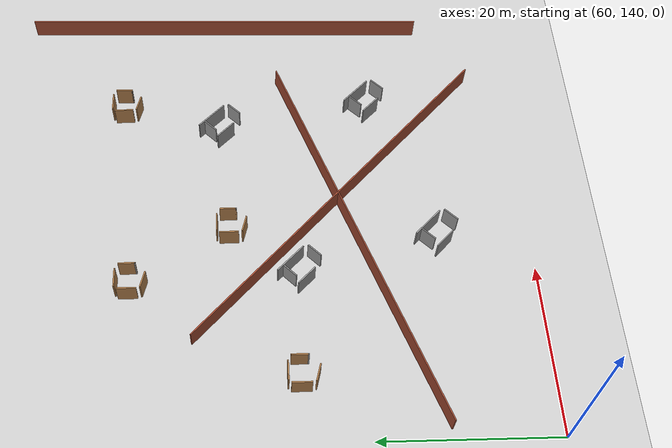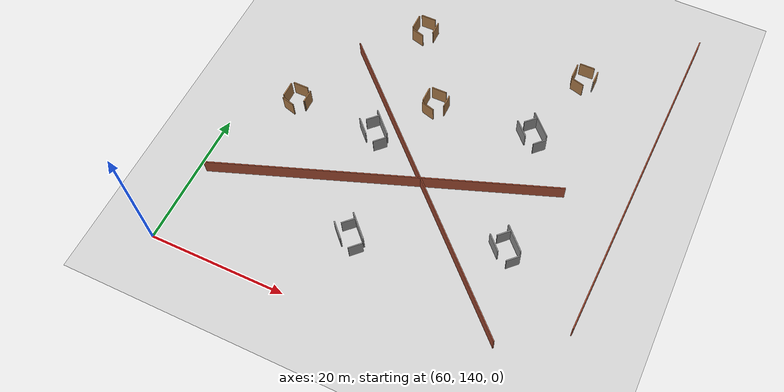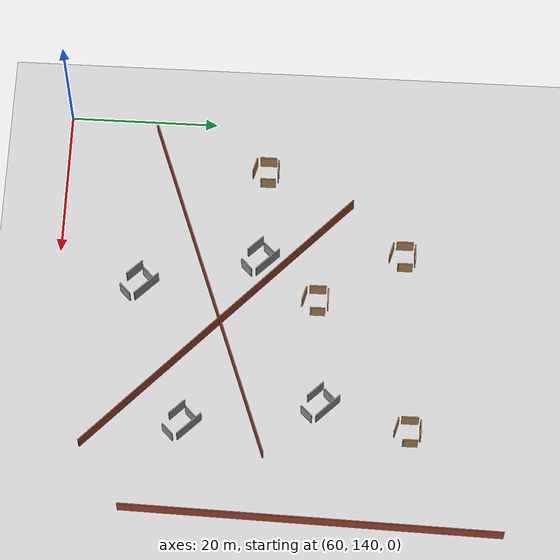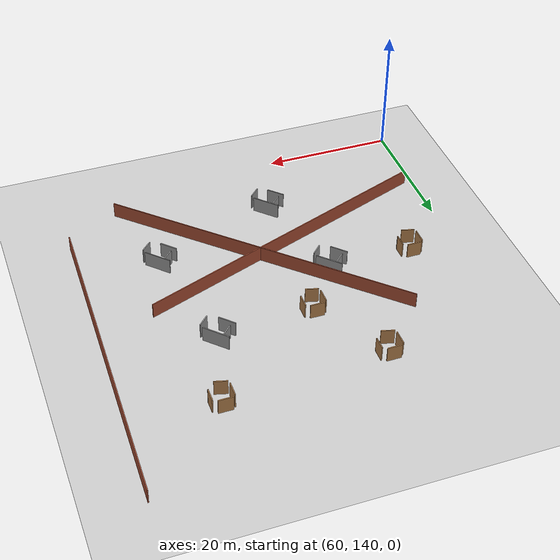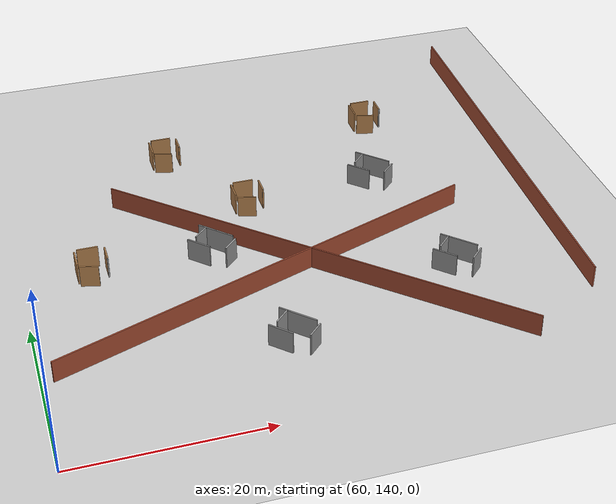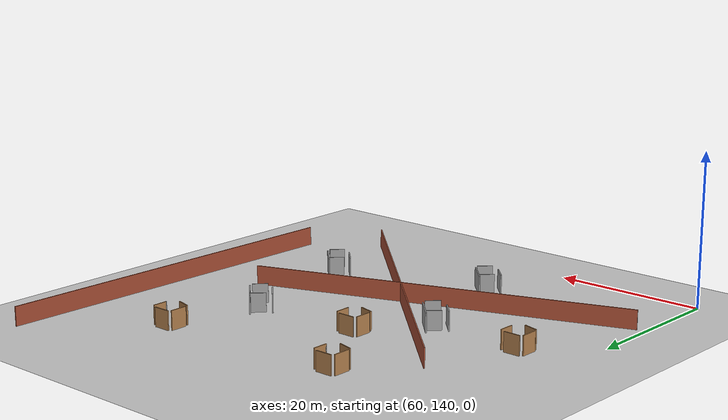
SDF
<sdf version="1.5">
 <world name="default">
  <model name="ground_plane">
   <static>1</static>
   <link name="link">
    <collision name="collision">
     <geometry><plane><normal>0 0 1</normal><size>100 100</size></plane></geometry>
     <surface><friction><ode><mu>100</mu><mu2>50</mu2></ode></friction></surface>
    </collision>
    <visual name="visual">
     <cast_shadows>0</cast_shadows>
     <geometry><plane><normal>0 0 1</normal><size>100 100</size></plane></geometry>
     <material>
      <script><uri>file://media/materials/scripts/gazebo.material</uri><name>Gazebo/Grey</name></script>
     </material>
    </visual>
   </link>
  </model>
  <model name="obs1_1">
   <pose>86 174.595 0 0 -0 0</pose>
   <link name="Wall_10">
    <collision name="Wall_10_Collision">
     <geometry><box><size>2 0.15 2.5</size></box></geometry>
     <pose>0 0 1.25 0 -0 0</pose>
    </collision>
    <visual name="Wall_10_Visual">
     <pose>0 0 1.25 0 -0 0</pose>
     <geometry><box><size>2 0.15 2.5</size></box></geometry>
     <material>
      <script><uri>file://media/materials/scripts/gazebo.material</uri><name>Gazebo/Wood</name></script>
      <ambient>1 1 1 1</ambient>
     </material>
    </visual>
    <pose>-0.505188 -1.46687 0 0 0 -0.261799</pose>
   </link>
   <link name="Wall_2">
    <collision name="Wall_2_Collision">
     <geometry><box><size>2.25 0.15 2.5</size></box></geometry>
     <pose>0 0 1.25 0 -0 0</pose>
    </collision>
    <visual name="Wall_2_Visual">
     <pose>0 0 1.25 0 -0 0</pose>
     <geometry><box><size>2.25 0.15 2.5</size></box></geometry>
     <material>
      <script><uri>file://media/materials/scripts/gazebo.material</uri><name>Gazebo/Wood</name></script>
      <ambient>1 1 1 1</ambient>
     </material>
    </visual>
    <pose>-1.58039 0.313508 0 0 0 -1.5708</pose>
   </link>
   <link name="Wall_5">
    <collision name="Wall_5_Collision">
     <geometry><box><size>2.25 0.15 2.5</size></box></geometry>
     <pose>0 0 1.25 0 -0 0</pose>
    </collision>
    <visual name="Wall_5_Visual">
     <pose>0 0 1.25 0 -0 0</pose>
     <geometry><box><size>2.25 0.15 2.5</size></box></geometry>
     <material>
      <script><uri>file://media/materials/scripts/gazebo.material</uri><name>Gazebo/Wood</name></script>
      <ambient>1 1 1 1</ambient>
     </material>
    </visual>
    <pose>-0.185262 1.72313 0 0 -0 0</pose>
   </link>
   <link name="Wall_7">
    <collision name="Wall_7_Collision">
     <geometry><box><size>2 0.15 2.5</size></box></geometry>
     <pose>0 0 1.25 0 -0 0</pose>
    </collision>
    <visual name="Wall_7_Visual">
     <pose>0 0 1.25 0 -0 0</pose>
     <geometry><box><size>2 0.15 2.5</size></box></geometry>
     <material>
      <script><uri>file://media/materials/scripts/gazebo.material</uri><name>Gazebo/Wood</name></script>
      <ambient>1 1 1 1</ambient>
     </material>
    </visual>
    <pose>1.58039 0.398833 0 0 0 -1.5708</pose>
   </link>
   <link name="Wall_8">
    <collision name="Wall_8_Collision">
     <geometry><box><size>0.15 0.15 2.5</size></box></geometry>
     <pose>0 0 1.25 0 -0 0</pose>
    </collision>
    <visual name="Wall_8_Visual">
     <pose>0 0 1.25 0 -0 0</pose>
     <geometry><box><size>0.15 0.15 2.5</size></box></geometry>
     <material>
      <script><uri>file://media/materials/scripts/gazebo.material</uri><name>Gazebo/Grey</name></script>
      <ambient>1 1 1 1</ambient>
     </material>
    </visual>
    <pose>1.58039 -0.526167 0 0 -0 0</pose>
   </link>
   <static>1</static>
  </model>
  <model name="obs2">
   <pose>80 167 0 0 -0 0</pose>
   <link name="Wall_0">
    <collision name="Wall_0_Collision">
     <geometry><box><size>2 0.15 2.5</size></box></geometry>
     <pose>0 0 1.25 0 -0 0</pose>
    </collision>
    <visual name="Wall_0_Visual">
     <pose>0 0 1.25 0 -0 0</pose>
     <geometry><box><size>2 0.15 2.5</size></box></geometry>
     <material>
      <script><uri>file://media/materials/scripts/gazebo.material</uri><name>Gazebo/Grey</name></script>
      <ambient>1 1 1 1</ambient>
     </material>
    </visual>
    <pose>-0.796332 1.10862 0 0 -0 0.785398</pose>
   </link>
   <link name="Wall_2">
    <collision name="Wall_2_Collision">
     <geometry><box><size>4.25 0.15 2.5</size></box></geometry>
     <pose>0 0 1.25 0 -0 0</pose>
    </collision>
    <visual name="Wall_2_Visual">
     <pose>0 0 1.25 0 -0 0</pose>
     <geometry><box><size>4.25 0.15 2.5</size></box></geometry>
     <material>
      <script><uri>file://media/materials/scripts/gazebo.material</uri><name>Gazebo/Grey</name></script>
      <ambient>1 1 1 1</ambient>
     </material>
    </visual>
    <pose>0.773928 0.982661 0 0 0 -0.785398</pose>
   </link>
   <link name="Wall_4">
    <collision name="Wall_4_Collision">
     <geometry><box><size>2.75 0.15 2.5</size></box></geometry>
     <pose>0 0 1.25 0 -0 0</pose>
    </collision>
    <visual name="Wall_4_Visual">
     <pose>0 0 1.25 0 -0 0</pose>
     <geometry><box><size>2.75 0.15 2.5</size></box></geometry>
     <material>
      <script><uri>file://media/materials/scripts/gazebo.material</uri><name>Gazebo/Grey</name></script>
      <ambient>1 1 1 1</ambient>
     </material>
    </visual>
    <pose>-1.45556 -0.740711 0 0 0 -0.785398</pose>
   </link>
   <link name="Wall_6">
    <collision name="Wall_6_Collision">
     <geometry><box><size>2 0.15 2.5</size></box></geometry>
     <pose>0 0 1.25 0 -0 0</pose>
    </collision>
    <visual name="Wall_6_Visual">
     <pose>0 0 1.25 0 -0 0</pose>
     <geometry><box><size>2 0.15 2.5</size></box></geometry>
     <material>
      <script><uri>file://media/materials/scripts/gazebo.material</uri><name>Gazebo/Grey</name></script>
      <ambient>1 1 1 1</ambient>
     </material>
    </visual>
    <pose>1.72073 -1.77816 0 0 -0 0.785398</pose>
   </link>
   <static>1</static>
  </model>
  <model name="wall1_clone_1">
   <pose>84.7221 160.32 0 0 0 -2.79456</pose>
   <link name="Wall_0">
    <collision name="Wall_0_Collision">
     <geometry><box><size>50 0.15 2.5</size></box></geometry>
     <pose>0 0 1.25 0 -0 0</pose>
    </collision>
    <visual name="Wall_0_Visual">
     <pose>0 0 1.25 0 -0 0</pose>
     <geometry><box><size>50 0.15 2.5</size></box></geometry>
     <material>
      <script><uri>file://media/materials/scripts/gazebo.material</uri><name>Gazebo/Bricks</name></script>
      <ambient>1 1 1 1</ambient>
     </material>
    </visual>
    <pose>1e-06 0 0 0 -0 3.14159</pose>
   </link>
   <static>1</static>
  </model>
  <model name="wall1_clone_4">
   <pose>116.89 175.383 0 0 0 -1.59681</pose>
   <link name="Wall_0">
    <collision name="Wall_0_Collision">
     <geometry><box><size>50 0.15 2.5</size></box></geometry>
     <pose>0 0 1.25 0 -0 0</pose>
    </collision>
    <visual name="Wall_0_Visual">
     <pose>0 0 1.25 0 -0 0</pose>
     <geometry><box><size>50 0.15 2.5</size></box></geometry>
     <material>
      <script><uri>file://media/materials/scripts/gazebo.material</uri><name>Gazebo/Bricks</name></script>
      <ambient>1 1 1 1</ambient>
     </material>
    </visual>
    <pose>1e-06 0 0 0 -0 3.14159</pose>
   </link>
   <static>1</static>
  </model>
  <model name="wall1_clone_5">
   <pose>89.7144 161.917 0 0 0 -0.75808</pose>
   <link name="Wall_0">
    <collision name="Wall_0_Collision">
     <geometry><box><size>50 0.15 2.5</size></box></geometry>
     <pose>0 0 1.25 0 -0 0</pose>
    </collision>
    <visual name="Wall_0_Visual">
     <pose>0 0 1.25 0 -0 0</pose>
     <geometry><box><size>50 0.15 2.5</size></box></geometry>
     <material>
      <script><uri>file://media/materials/scripts/gazebo.material</uri><name>Gazebo/Bricks</name></script>
      <ambient>1 1 1 1</ambient>
     </material>
    </visual>
    <pose>1e-06 0 0 0 -0 3.14159</pose>
   </link>
   <static>1</static>
  </model>
  <model name="obs1_clone_3">
   <pose>67.4072 167 0 0 -0 0</pose>
   <link name="Wall_10">
    <collision name="Wall_10_Collision">
     <geometry><box><size>2 0.15 2.5</size></box></geometry>
     <pose>0 0 1.25 0 -0 0</pose>
    </collision>
    <visual name="Wall_10_Visual">
     <pose>0 0 1.25 0 -0 0</pose>
     <geometry><box><size>2 0.15 2.5</size></box></geometry>
     <material>
      <script><uri>file://media/materials/scripts/gazebo.material</uri><name>Gazebo/Wood</name></script>
      <ambient>1 1 1 1</ambient>
     </material>
    </visual>
    <pose>-0.505188 -1.46687 0 0 0 -0.261799</pose>
   </link>
   <link name="Wall_2">
    <collision name="Wall_2_Collision">
     <geometry><box><size>2.25 0.15 2.5</size></box></geometry>
     <pose>0 0 1.25 0 -0 0</pose>
    </collision>
    <visual name="Wall_2_Visual">
     <pose>0 0 1.25 0 -0 0</pose>
     <geometry><box><size>2.25 0.15 2.5</size></box></geometry>
     <material>
      <script><uri>file://media/materials/scripts/gazebo.material</uri><name>Gazebo/Wood</name></script>
      <ambient>1 1 1 1</ambient>
     </material>
    </visual>
    <pose>-1.58039 0.313508 0 0 0 -1.5708</pose>
   </link>
   <link name="Wall_5">
    <collision name="Wall_5_Collision">
     <geometry><box><size>2.25 0.15 2.5</size></box></geometry>
     <pose>0 0 1.25 0 -0 0</pose>
    </collision>
    <visual name="Wall_5_Visual">
     <pose>0 0 1.25 0 -0 0</pose>
     <geometry><box><size>2.25 0.15 2.5</size></box></geometry>
     <material>
      <script><uri>file://media/materials/scripts/gazebo.material</uri><name>Gazebo/Wood</name></script>
      <ambient>1 1 1 1</ambient>
     </material>
    </visual>
    <pose>-0.185262 1.72313 0 0 -0 0</pose>
   </link>
   <link name="Wall_7">
    <collision name="Wall_7_Collision">
     <geometry><box><size>2 0.15 2.5</size></box></geometry>
     <pose>0 0 1.25 0 -0 0</pose>
    </collision>
    <visual name="Wall_7_Visual">
     <pose>0 0 1.25 0 -0 0</pose>
     <geometry><box><size>2 0.15 2.5</size></box></geometry>
     <material>
      <script><uri>file://media/materials/scripts/gazebo.material</uri><name>Gazebo/Wood</name></script>
      <ambient>1 1 1 1</ambient>
     </material>
    </visual>
    <pose>1.58039 0.398833 0 0 0 -1.5708</pose>
   </link>
   <link name="Wall_8">
    <collision name="Wall_8_Collision">
     <geometry><box><size>0.15 0.15 2.5</size></box></geometry>
     <pose>0 0 1.25 0 -0 0</pose>
    </collision>
    <visual name="Wall_8_Visual">
     <pose>0 0 1.25 0 -0 0</pose>
     <geometry><box><size>0.15 0.15 2.5</size></box></geometry>
     <material>
      <script><uri>file://media/materials/scripts/gazebo.material</uri><name>Gazebo/Grey</name></script>
      <ambient>1 1 1 1</ambient>
     </material>
    </visual>
    <pose>1.58039 -0.526167 0 0 -0 0</pose>
   </link>
   <static>1</static>
  </model>
  <model name="obs1_clone_4">
   <pose>79 186 0 0 -0 0</pose>
   <link name="Wall_10">
    <collision name="Wall_10_Collision">
     <geometry><box><size>2 0.15 2.5</size></box></geometry>
     <pose>0 0 1.25 0 -0 0</pose>
    </collision>
    <visual name="Wall_10_Visual">
     <pose>0 0 1.25 0 -0 0</pose>
     <geometry><box><size>2 0.15 2.5</size></box></geometry>
     <material>
      <script><uri>file://media/materials/scripts/gazebo.material</uri><name>Gazebo/Wood</name></script>
      <ambient>1 1 1 1</ambient>
     </material>
    </visual>
    <pose>-0.505188 -1.46687 0 0 0 -0.261799</pose>
   </link>
   <link name="Wall_2">
    <collision name="Wall_2_Collision">
     <geometry><box><size>2.25 0.15 2.5</size></box></geometry>
     <pose>0 0 1.25 0 -0 0</pose>
    </collision>
    <visual name="Wall_2_Visual">
     <pose>0 0 1.25 0 -0 0</pose>
     <geometry><box><size>2.25 0.15 2.5</size></box></geometry>
     <material>
      <script><uri>file://media/materials/scripts/gazebo.material</uri><name>Gazebo/Wood</name></script>
      <ambient>1 1 1 1</ambient>
     </material>
    </visual>
    <pose>-1.58039 0.313508 0 0 0 -1.5708</pose>
   </link>
   <link name="Wall_5">
    <collision name="Wall_5_Collision">
     <geometry><box><size>2.25 0.15 2.5</size></box></geometry>
     <pose>0 0 1.25 0 -0 0</pose>
    </collision>
    <visual name="Wall_5_Visual">
     <pose>0 0 1.25 0 -0 0</pose>
     <geometry><box><size>2.25 0.15 2.5</size></box></geometry>
     <material>
      <script><uri>file://media/materials/scripts/gazebo.material</uri><name>Gazebo/Wood</name></script>
      <ambient>1 1 1 1</ambient>
     </material>
    </visual>
    <pose>-0.185262 1.72313 0 0 -0 0</pose>
   </link>
   <link name="Wall_7">
    <collision name="Wall_7_Collision">
     <geometry><box><size>2 0.15 2.5</size></box></geometry>
     <pose>0 0 1.25 0 -0 0</pose>
    </collision>
    <visual name="Wall_7_Visual">
     <pose>0 0 1.25 0 -0 0</pose>
     <geometry><box><size>2 0.15 2.5</size></box></geometry>
     <material>
      <script><uri>file://media/materials/scripts/gazebo.material</uri><name>Gazebo/Wood</name></script>
      <ambient>1 1 1 1</ambient>
     </material>
    </visual>
    <pose>1.58039 0.398833 0 0 0 -1.5708</pose>
   </link>
   <link name="Wall_8">
    <collision name="Wall_8_Collision">
     <geometry><box><size>0.15 0.15 2.5</size></box></geometry>
     <pose>0 0 1.25 0 -0 0</pose>
    </collision>
    <visual name="Wall_8_Visual">
     <pose>0 0 1.25 0 -0 0</pose>
     <geometry><box><size>0.15 0.15 2.5</size></box></geometry>
     <material>
      <script><uri>file://media/materials/scripts/gazebo.material</uri><name>Gazebo/Grey</name></script>
      <ambient>1 1 1 1</ambient>
     </material>
    </visual>
    <pose>1.58039 -0.526167 0 0 -0 0</pose>
   </link>
   <static>1</static>
  </model>
  <model name="obs1_clone_5">
   <pose>104 187.516 0 0 -0 0</pose>
   <link name="Wall_10">
    <collision name="Wall_10_Collision">
     <geometry><box><size>2 0.15 2.5</size></box></geometry>
     <pose>0 0 1.25 0 -0 0</pose>
    </collision>
    <visual name="Wall_10_Visual">
     <pose>0 0 1.25 0 -0 0</pose>
     <geometry><box><size>2 0.15 2.5</size></box></geometry>
     <material>
      <script><uri>file://media/materials/scripts/gazebo.material</uri><name>Gazebo/Wood</name></script>
      <ambient>1 1 1 1</ambient>
     </material>
    </visual>
    <pose>-0.505188 -1.46687 0 0 0 -0.261799</pose>
   </link>
   <link name="Wall_2">
    <collision name="Wall_2_Collision">
     <geometry><box><size>2.25 0.15 2.5</size></box></geometry>
     <pose>0 0 1.25 0 -0 0</pose>
    </collision>
    <visual name="Wall_2_Visual">
     <pose>0 0 1.25 0 -0 0</pose>
     <geometry><box><size>2.25 0.15 2.5</size></box></geometry>
     <material>
      <script><uri>file://media/materials/scripts/gazebo.material</uri><name>Gazebo/Wood</name></script>
      <ambient>1 1 1 1</ambient>
     </material>
    </visual>
    <pose>-1.58039 0.313508 0 0 0 -1.5708</pose>
   </link>
   <link name="Wall_5">
    <collision name="Wall_5_Collision">
     <geometry><box><size>2.25 0.15 2.5</size></box></geometry>
     <pose>0 0 1.25 0 -0 0</pose>
    </collision>
    <visual name="Wall_5_Visual">
     <pose>0 0 1.25 0 -0 0</pose>
     <geometry><box><size>2.25 0.15 2.5</size></box></geometry>
     <material>
      <script><uri>file://media/materials/scripts/gazebo.material</uri><name>Gazebo/Wood</name></script>
      <ambient>1 1 1 1</ambient>
     </material>
    </visual>
    <pose>-0.185262 1.72313 0 0 -0 0</pose>
   </link>
   <link name="Wall_7">
    <collision name="Wall_7_Collision">
     <geometry><box><size>2 0.15 2.5</size></box></geometry>
     <pose>0 0 1.25 0 -0 0</pose>
    </collision>
    <visual name="Wall_7_Visual">
     <pose>0 0 1.25 0 -0 0</pose>
     <geometry><box><size>2 0.15 2.5</size></box></geometry>
     <material>
      <script><uri>file://media/materials/scripts/gazebo.material</uri><name>Gazebo/Wood</name></script>
      <ambient>1 1 1 1</ambient>
     </material>
    </visual>
    <pose>1.58039 0.398833 0 0 0 -1.5708</pose>
   </link>
   <link name="Wall_8">
    <collision name="Wall_8_Collision">
     <geometry><box><size>0.15 0.15 2.5</size></box></geometry>
     <pose>0 0 1.25 0 -0 0</pose>
    </collision>
    <visual name="Wall_8_Visual">
     <pose>0 0 1.25 0 -0 0</pose>
     <geometry><box><size>0.15 0.15 2.5</size></box></geometry>
     <material>
      <script><uri>file://media/materials/scripts/gazebo.material</uri><name>Gazebo/Grey</name></script>
      <ambient>1 1 1 1</ambient>
     </material>
    </visual>
    <pose>1.58039 -0.526167 0 0 -0 0</pose>
   </link>
   <static>1</static>
  </model>
  <model name="obs2_5_clone_clone_clone_2">
   <pose>100.554 176 0 0 -0 0</pose>
   <link name="Wall_0">
    <collision name="Wall_0_Collision">
     <geometry><box><size>2 0.15 2.5</size></box></geometry>
     <pose>0 0 1.25 0 -0 0</pose>
    </collision>
    <visual name="Wall_0_Visual">
     <pose>0 0 1.25 0 -0 0</pose>
     <geometry><box><size>2 0.15 2.5</size></box></geometry>
     <material>
      <script><uri>file://media/materials/scripts/gazebo.material</uri><name>Gazebo/Grey</name></script>
      <ambient>1 1 1 1</ambient>
     </material>
    </visual>
    <pose>-0.796332 1.10862 0 0 -0 0.785398</pose>
   </link>
   <link name="Wall_2">
    <collision name="Wall_2_Collision">
     <geometry><box><size>4.25 0.15 2.5</size></box></geometry>
     <pose>0 0 1.25 0 -0 0</pose>
    </collision>
    <visual name="Wall_2_Visual">
     <pose>0 0 1.25 0 -0 0</pose>
     <geometry><box><size>4.25 0.15 2.5</size></box></geometry>
     <material>
      <script><uri>file://media/materials/scripts/gazebo.material</uri><name>Gazebo/Grey</name></script>
      <ambient>1 1 1 1</ambient>
     </material>
    </visual>
    <pose>0.773928 0.982661 0 0 0 -0.785398</pose>
   </link>
   <link name="Wall_4">
    <collision name="Wall_4_Collision">
     <geometry><box><size>2.75 0.15 2.5</size></box></geometry>
     <pose>0 0 1.25 0 -0 0</pose>
    </collision>
    <visual name="Wall_4_Visual">
     <pose>0 0 1.25 0 -0 0</pose>
     <geometry><box><size>2.75 0.15 2.5</size></box></geometry>
     <material>
      <script><uri>file://media/materials/scripts/gazebo.material</uri><name>Gazebo/Grey</name></script>
      <ambient>1 1 1 1</ambient>
     </material>
    </visual>
    <pose>-1.45556 -0.740711 0 0 0 -0.785398</pose>
   </link>
   <link name="Wall_6">
    <collision name="Wall_6_Collision">
     <geometry><box><size>2 0.15 2.5</size></box></geometry>
     <pose>0 0 1.25 0 -0 0</pose>
    </collision>
    <visual name="Wall_6_Visual">
     <pose>0 0 1.25 0 -0 0</pose>
     <geometry><box><size>2 0.15 2.5</size></box></geometry>
     <material>
      <script><uri>file://media/materials/scripts/gazebo.material</uri><name>Gazebo/Grey</name></script>
      <ambient>1 1 1 1</ambient>
     </material>
    </visual>
    <pose>1.72073 -1.77816 0 0 -0 0.785398</pose>
   </link>
   <static>1</static>
  </model>
  <model name="obs2_5_clone_clone_clone_3">
   <pose>104 158 0 0 -0 0</pose>
   <link name="Wall_0">
    <collision name="Wall_0_Collision">
     <geometry><box><size>2 0.15 2.5</size></box></geometry>
     <pose>0 0 1.25 0 -0 0</pose>
    </collision>
    <visual name="Wall_0_Visual">
     <pose>0 0 1.25 0 -0 0</pose>
     <geometry><box><size>2 0.15 2.5</size></box></geometry>
     <material>
      <script><uri>file://media/materials/scripts/gazebo.material</uri><name>Gazebo/Grey</name></script>
      <ambient>1 1 1 1</ambient>
     </material>
    </visual>
    <pose>-0.796332 1.10862 0 0 -0 0.785398</pose>
   </link>
   <link name="Wall_2">
    <collision name="Wall_2_Collision">
     <geometry><box><size>4.25 0.15 2.5</size></box></geometry>
     <pose>0 0 1.25 0 -0 0</pose>
    </collision>
    <visual name="Wall_2_Visual">
     <pose>0 0 1.25 0 -0 0</pose>
     <geometry><box><size>4.25 0.15 2.5</size></box></geometry>
     <material>
      <script><uri>file://media/materials/scripts/gazebo.material</uri><name>Gazebo/Grey</name></script>
      <ambient>1 1 1 1</ambient>
     </material>
    </visual>
    <pose>0.773928 0.982661 0 0 0 -0.785398</pose>
   </link>
   <link name="Wall_4">
    <collision name="Wall_4_Collision">
     <geometry><box><size>2.75 0.15 2.5</size></box></geometry>
     <pose>0 0 1.25 0 -0 0</pose>
    </collision>
    <visual name="Wall_4_Visual">
     <pose>0 0 1.25 0 -0 0</pose>
     <geometry><box><size>2.75 0.15 2.5</size></box></geometry>
     <material>
      <script><uri>file://media/materials/scripts/gazebo.material</uri><name>Gazebo/Grey</name></script>
      <ambient>1 1 1 1</ambient>
     </material>
    </visual>
    <pose>-1.45556 -0.740711 0 0 0 -0.785398</pose>
   </link>
   <link name="Wall_6">
    <collision name="Wall_6_Collision">
     <geometry><box><size>2 0.15 2.5</size></box></geometry>
     <pose>0 0 1.25 0 -0 0</pose>
    </collision>
    <visual name="Wall_6_Visual">
     <pose>0 0 1.25 0 -0 0</pose>
     <geometry><box><size>2 0.15 2.5</size></box></geometry>
     <material>
      <script><uri>file://media/materials/scripts/gazebo.material</uri><name>Gazebo/Grey</name></script>
      <ambient>1 1 1 1</ambient>
     </material>
    </visual>
    <pose>1.72073 -1.77816 0 0 -0 0.785398</pose>
   </link>
   <static>1</static>
  </model>
  <model name="obs2_5_clone_clone_clone_4">
   <pose>84.4023 151 0 0 -0 0</pose>
   <link name="Wall_0">
    <collision name="Wall_0_Collision">
     <geometry><box><size>2 0.15 2.5</size></box></geometry>
     <pose>0 0 1.25 0 -0 0</pose>
    </collision>
    <visual name="Wall_0_Visual">
     <pose>0 0 1.25 0 -0 0</pose>
     <geometry><box><size>2 0.15 2.5</size></box></geometry>
     <material>
      <script><uri>file://media/materials/scripts/gazebo.material</uri><name>Gazebo/Grey</name></script>
      <ambient>1 1 1 1</ambient>
     </material>
    </visual>
    <pose>-0.796332 1.10862 0 0 -0 0.785398</pose>
   </link>
   <link name="Wall_2">
    <collision name="Wall_2_Collision">
     <geometry><box><size>4.25 0.15 2.5</size></box></geometry>
     <pose>0 0 1.25 0 -0 0</pose>
    </collision>
    <visual name="Wall_2_Visual">
     <pose>0 0 1.25 0 -0 0</pose>
     <geometry><box><size>4.25 0.15 2.5</size></box></geometry>
     <material>
      <script><uri>file://media/materials/scripts/gazebo.material</uri><name>Gazebo/Grey</name></script>
      <ambient>1 1 1 1</ambient>
     </material>
    </visual>
    <pose>0.773928 0.982661 0 0 0 -0.785398</pose>
   </link>
   <link name="Wall_4">
    <collision name="Wall_4_Collision">
     <geometry><box><size>2.75 0.15 2.5</size></box></geometry>
     <pose>0 0 1.25 0 -0 0</pose>
    </collision>
    <visual name="Wall_4_Visual">
     <pose>0 0 1.25 0 -0 0</pose>
     <geometry><box><size>2.75 0.15 2.5</size></box></geometry>
     <material>
      <script><uri>file://media/materials/scripts/gazebo.material</uri><name>Gazebo/Grey</name></script>
      <ambient>1 1 1 1</ambient>
     </material>
    </visual>
    <pose>-1.45556 -0.740711 0 0 0 -0.785398</pose>
   </link>
   <link name="Wall_6">
    <collision name="Wall_6_Collision">
     <geometry><box><size>2 0.15 2.5</size></box></geometry>
     <pose>0 0 1.25 0 -0 0</pose>
    </collision>
    <visual name="Wall_6_Visual">
     <pose>0 0 1.25 0 -0 0</pose>
     <geometry><box><size>2 0.15 2.5</size></box></geometry>
     <material>
      <script><uri>file://media/materials/scripts/gazebo.material</uri><name>Gazebo/Grey</name></script>
      <ambient>1 1 1 1</ambient>
     </material>
    </visual>
    <pose>1.72073 -1.77816 0 0 -0 0.785398</pose>
   </link>
   <static>1</static>
  </model>
 </world>
</sdf>
